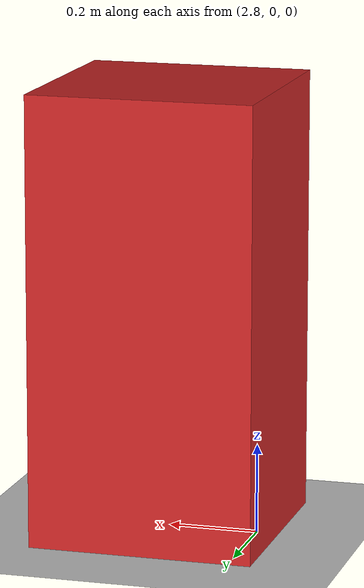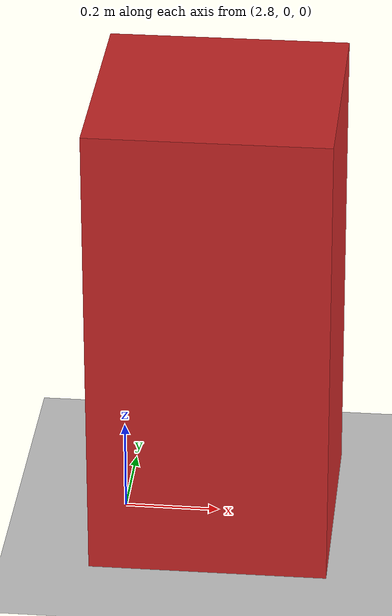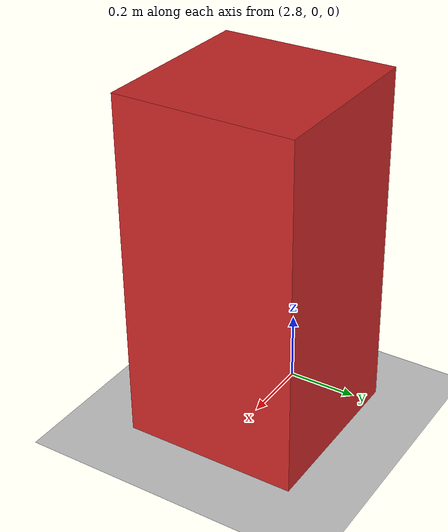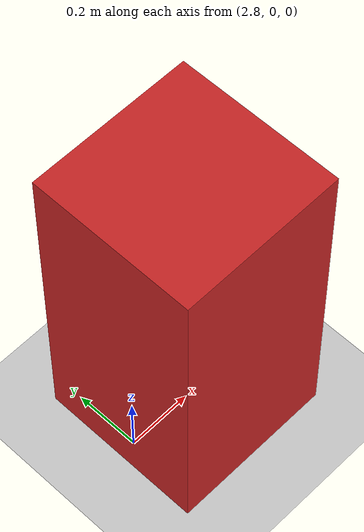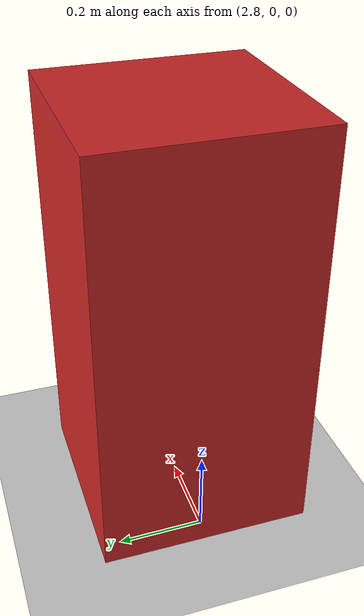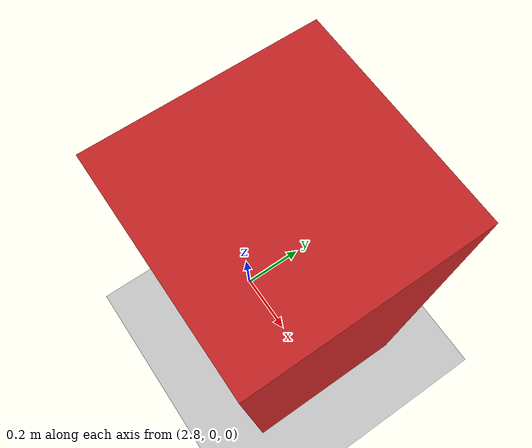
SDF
<?xml version="1.0" ?>
<sdf version="1.4">
  <!-- We use a custom world for the rrbot so that the camera angle is launched correctly -->

  <world name="default">
    <include>
      <uri>model://ground_plane</uri>
    </include>

    <!-- Global light source -->
    <include>
      <uri>model://sun</uri>
    </include>

    <!-- Focus camera on tall pendulum -->
    <gui fullscreen='0'>
      <camera name='user_camera'>
        <pose>4.927360 -4.376610 3.740080 0.000000 0.275643 2.356190</pose>
        <view_controller>orbit</view_controller>
      </camera>
    </gui>

<model name="custom_ground_plane_box">
     <pose>3 0 0.5 0 0 0</pose>
      <link name="link">
        <inertial>
          <pose>0 0 0 0 0 0</pose>
          <mass>100</mass>
          <inertia>
            <ixx>3.33341666667e+3</ixx>
            <ixy>0.0</ixy>
            <ixz>0.0</ixz>
            <iyy>3.33341666667e+3</iyy>
            <iyz>0.0</iyz>
            <izz>6.66666666667e+3</izz>
          </inertia>
        </inertial>
        <collision name="collision">
          <geometry>
            <box>
              <size>0.5 0.5 1.0</size>
            </box>
          </geometry>
          <surface>
              <friction>
                <ode>
                  <mu>0</mu>
                  <mu2>0</mu2>
                </ode>
              </friction>
            </surface>
        </collision>

        <visual name="visual">
          <geometry>
            <box>
              <size>0.5 0.5 1.0</size>
            </box>
          </geometry>
          <material>
              <script>
                <uri>file://media/materials/scripts/gazebo.material</uri>
                <name>Gazebo/Red</name>
              </script>
            </material>
        </visual>
      </link>
      <plugin name="plannar_mover_plugin" filename="libplannar_mover_plugin.so"/>
    </model>

  </world>
</sdf>
